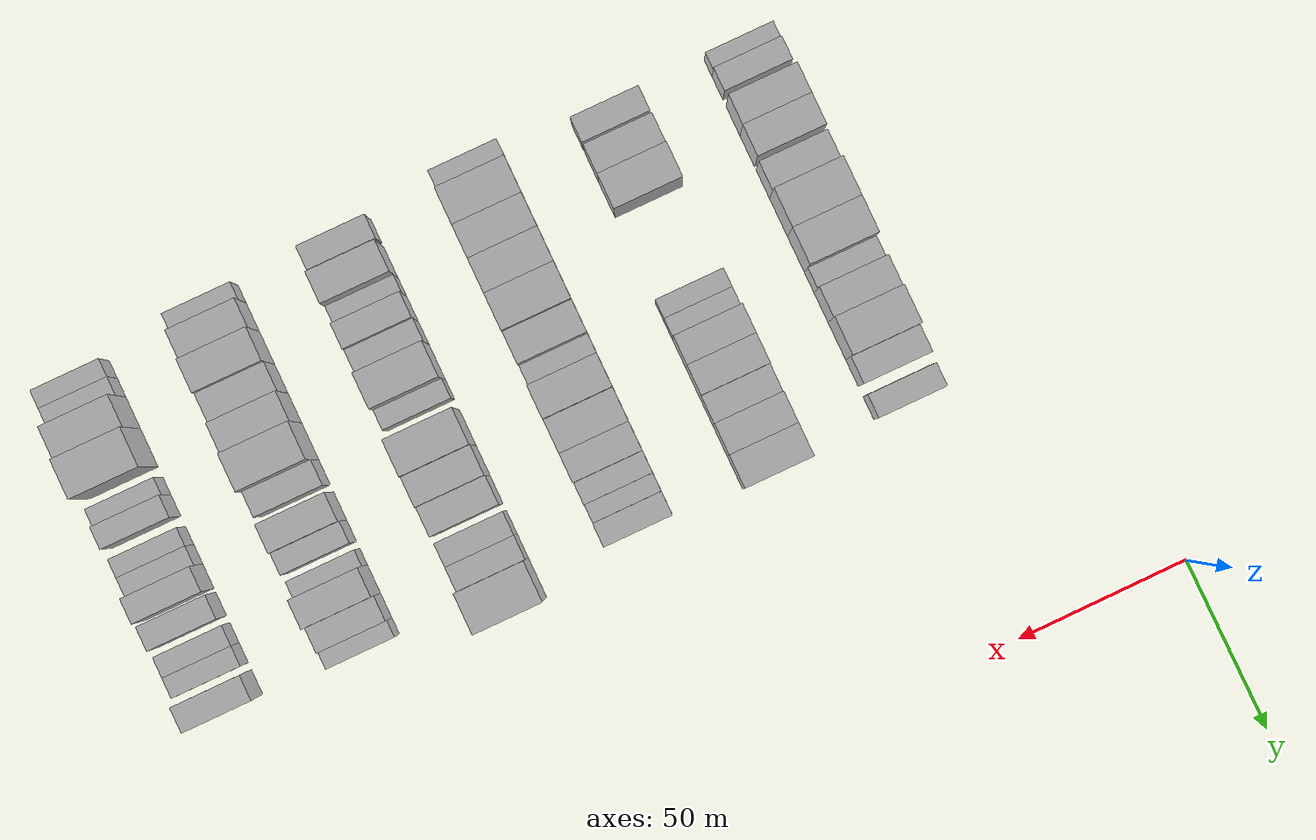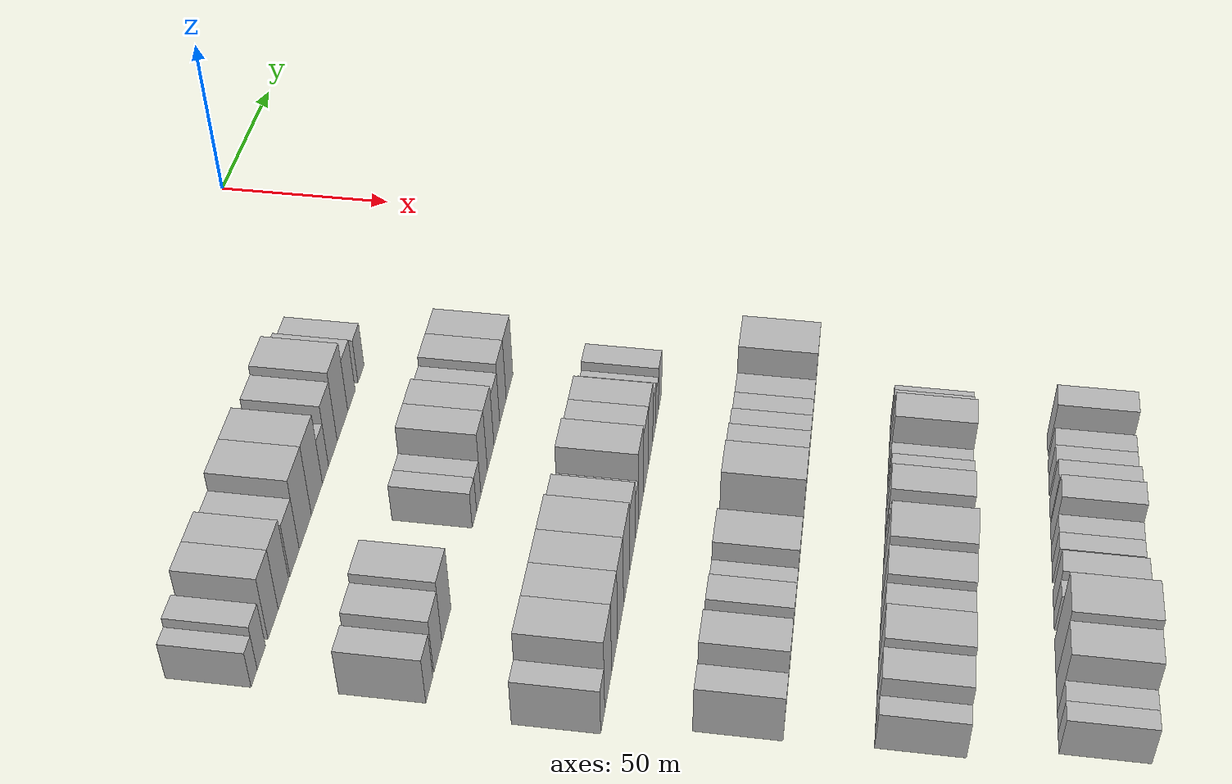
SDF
<sdf version="1.6">
 <world name="default">
  <model name="building_51">
   <static>1</static>
   <pose>50.0000 -174.9317 0 0.000000 0.000000 0.000000</pose>
   <link name="link">
    <pose>0 0 6.00 0 0 0</pose>
    <collision name="collision"><geometry><box><size>20.0000 4.9875 12.0000</size></box></geometry></collision>
    <visual name="visual">
     <cast_shadows>0</cast_shadows>
     <geometry><box><size>20.0000 4.9875 12.0000</size></box></geometry>
     <material>
      <script>
       <uri>model://HANNAS_wall/materials/scripts</uri>
       <uri>model://HANNAS_wall/materials/textures</uri>
       <name>vrc/HANNAS_wall</name>
      </script>
     </material>
    </visual>
   </link>
  </model>
  <model name="building_52">
   <static>1</static>
   <pose>50.0000 -168.9902 0 0.000000 0.000000 0.000000</pose>
   <link name="link">
    <pose>0 0 7.50 0 0 0</pose>
    <collision name="collision"><geometry><box><size>20.0000 6.8953 15.0000</size></box></geometry></collision>
    <visual name="visual">
     <cast_shadows>0</cast_shadows>
     <geometry><box><size>20.0000 6.8953 15.0000</size></box></geometry>
     <material>
      <script>
       <uri>model://HANNAS_wall/materials/scripts</uri>
       <uri>model://HANNAS_wall/materials/textures</uri>
       <name>vrc/HANNAS_wall</name>
      </script>
     </material>
    </visual>
   </link>
  </model>
  <model name="building_53">
   <static>1</static>
   <pose>50.0000 -159.1283 0 0.000000 0.000000 0.000000</pose>
   <link name="link">
    <pose>0 0 10.50 0 0 0</pose>
    <collision name="collision"><geometry><box><size>20.0000 8.8286 21.0000</size></box></geometry></collision>
    <visual name="visual">
     <cast_shadows>0</cast_shadows>
     <geometry><box><size>20.0000 8.8286 21.0000</size></box></geometry>
     <material>
      <script>
       <uri>model://HANNAS_wall/materials/scripts</uri>
       <uri>model://HANNAS_wall/materials/textures</uri>
       <name>vrc/HANNAS_wall</name>
      </script>
     </material>
    </visual>
   </link>
  </model>
  <model name="building_54">
   <static>1</static>
   <pose>50.0000 -150.0914 0 0.000000 0.000000 0.000000</pose>
   <link name="link">
    <pose>0 0 10.50 0 0 0</pose>
    <collision name="collision"><geometry><box><size>20.0000 9.2452 21.0000</size></box></geometry></collision>
    <visual name="visual">
     <cast_shadows>0</cast_shadows>
     <geometry><box><size>20.0000 9.2452 21.0000</size></box></geometry>
     <material>
      <script>
       <uri>model://HANNAS_wall/materials/scripts</uri>
       <uri>model://HANNAS_wall/materials/textures</uri>
       <name>vrc/HANNAS_wall</name>
      </script>
     </material>
    </visual>
   </link>
  </model>
  <model name="building_55">
   <static>1</static>
   <pose>50.0000 -140.1754 0 0.000000 0.000000 0.000000</pose>
   <link name="link">
    <pose>0 0 9.00 0 0 0</pose>
    <collision name="collision"><geometry><box><size>20.0000 8.5867 18.0000</size></box></geometry></collision>
    <visual name="visual">
     <cast_shadows>0</cast_shadows>
     <geometry><box><size>20.0000 8.5867 18.0000</size></box></geometry>
     <material>
      <script>
       <uri>model://HANNAS_wall/materials/scripts</uri>
       <uri>model://HANNAS_wall/materials/textures</uri>
       <name>vrc/HANNAS_wall</name>
      </script>
     </material>
    </visual>
   </link>
  </model>
  <model name="building_56">
   <static>1</static>
   <pose>50.0000 -130.2048 0 0.000000 0.000000 0.000000</pose>
   <link name="link">
    <pose>0 0 12.00 0 0 0</pose>
    <collision name="collision"><geometry><box><size>20.0000 11.3546 24.0000</size></box></geometry></collision>
    <visual name="visual">
     <cast_shadows>0</cast_shadows>
     <geometry><box><size>20.0000 11.3546 24.0000</size></box></geometry>
     <material>
      <script>
       <uri>model://HANNAS_wall/materials/scripts</uri>
       <uri>model://HANNAS_wall/materials/textures</uri>
       <name>vrc/HANNAS_wall</name>
      </script>
     </material>
    </visual>
   </link>
  </model>
  <model name="building_57">
   <static>1</static>
   <pose>50.0000 -119.1630 0 0.000000 0.000000 0.000000</pose>
   <link name="link">
    <pose>0 0 12.00 0 0 0</pose>
    <collision name="collision"><geometry><box><size>20.0000 10.7291 24.0000</size></box></geometry></collision>
    <visual name="visual">
     <cast_shadows>0</cast_shadows>
     <geometry><box><size>20.0000 10.7291 24.0000</size></box></geometry>
     <material>
      <script>
       <uri>model://HANNAS_wall/materials/scripts</uri>
       <uri>model://HANNAS_wall/materials/textures</uri>
       <name>vrc/HANNAS_wall</name>
      </script>
     </material>
    </visual>
   </link>
  </model>
  <model name="building_58">
   <static>1</static>
   <pose>50.0000 -110.7547 0 0.000000 0.000000 0.000000</pose>
   <link name="link">
    <pose>0 0 7.50 0 0 0</pose>
    <collision name="collision"><geometry><box><size>20.0000 6.0874 15.0000</size></box></geometry></collision>
    <visual name="visual">
     <cast_shadows>0</cast_shadows>
     <geometry><box><size>20.0000 6.0874 15.0000</size></box></geometry>
     <material>
      <script>
       <uri>model://HANNAS_wall/materials/scripts</uri>
       <uri>model://HANNAS_wall/materials/textures</uri>
       <name>vrc/HANNAS_wall</name>
      </script>
     </material>
    </visual>
   </link>
  </model>
  <model name="building_59">
   <static>1</static>
   <pose>50.0000 -103.2702 0 0.000000 0.000000 0.000000</pose>
   <link name="link">
    <pose>0 0 10.50 0 0 0</pose>
    <collision name="collision"><geometry><box><size>20.0000 8.8816 21.0000</size></box></geometry></collision>
    <visual name="visual">
     <cast_shadows>0</cast_shadows>
     <geometry><box><size>20.0000 8.8816 21.0000</size></box></geometry>
     <material>
      <script>
       <uri>model://HANNAS_wall/materials/scripts</uri>
       <uri>model://HANNAS_wall/materials/textures</uri>
       <name>vrc/HANNAS_wall</name>
      </script>
     </material>
    </visual>
   </link>
  </model>
  <model name="building_60">
   <static>1</static>
   <pose>50.0000 -93.2783 0 0.000000 0.000000 0.000000</pose>
   <link name="link">
    <pose>0 0 12.00 0 0 0</pose>
    <collision name="collision"><geometry><box><size>20.0000 11.1021 24.0000</size></box></geometry></collision>
    <visual name="visual">
     <cast_shadows>0</cast_shadows>
     <geometry><box><size>20.0000 11.1021 24.0000</size></box></geometry>
     <material>
      <script>
       <uri>model://HANNAS_wall/materials/scripts</uri>
       <uri>model://HANNAS_wall/materials/textures</uri>
       <name>vrc/HANNAS_wall</name>
      </script>
     </material>
    </visual>
   </link>
  </model>
  <model name="building_61">
   <static>1</static>
   <pose>50.0000 -83.7595 0 0.000000 0.000000 0.000000</pose>
   <link name="link">
    <pose>0 0 9.00 0 0 0</pose>
    <collision name="collision"><geometry><box><size>20.0000 7.9356 18.0000</size></box></geometry></collision>
    <visual name="visual">
     <cast_shadows>0</cast_shadows>
     <geometry><box><size>20.0000 7.9356 18.0000</size></box></geometry>
     <material>
      <script>
       <uri>model://HANNAS_wall/materials/scripts</uri>
       <uri>model://HANNAS_wall/materials/textures</uri>
       <name>vrc/HANNAS_wall</name>
      </script>
     </material>
    </visual>
   </link>
  </model>
  <model name="building_62">
   <static>1</static>
   <pose>50.0000 -73.3853 0 0.000000 0.000000 0.000000</pose>
   <link name="link">
    <pose>0 0 7.50 0 0 0</pose>
    <collision name="collision"><geometry><box><size>20.0000 6.8128 15.0000</size></box></geometry></collision>
    <visual name="visual">
     <cast_shadows>0</cast_shadows>
     <geometry><box><size>20.0000 6.8128 15.0000</size></box></geometry>
     <material>
      <script>
       <uri>model://HANNAS_wall/materials/scripts</uri>
       <uri>model://HANNAS_wall/materials/textures</uri>
       <name>vrc/HANNAS_wall</name>
      </script>
     </material>
    </visual>
   </link>
  </model>
  <model name="building_185">
   <static>1</static>
   <pose>90.0000 -172.8648 0 0.000000 0.000000 0.000000</pose>
   <link name="link">
    <pose>0 0 7.50 0 0 0</pose>
    <collision name="collision"><geometry><box><size>20.0000 7.4300 15.0000</size></box></geometry></collision>
    <visual name="visual">
     <cast_shadows>0</cast_shadows>
     <geometry><box><size>20.0000 7.4300 15.0000</size></box></geometry>
     <material>
      <script>
       <uri>model://HANNAS_wall/materials/scripts</uri>
       <uri>model://HANNAS_wall/materials/textures</uri>
       <name>vrc/HANNAS_wall</name>
      </script>
     </material>
    </visual>
   </link>
  </model>
  <model name="building_186">
   <static>1</static>
   <pose>90.0000 -163.6841 0 0.000000 0.000000 0.000000</pose>
   <link name="link">
    <pose>0 0 9.00 0 0 0</pose>
    <collision name="collision"><geometry><box><size>20.0000 8.9315 18.0000</size></box></geometry></collision>
    <visual name="visual">
     <cast_shadows>0</cast_shadows>
     <geometry><box><size>20.0000 8.9315 18.0000</size></box></geometry>
     <material>
      <script>
       <uri>model://HANNAS_wall/materials/scripts</uri>
       <uri>model://HANNAS_wall/materials/textures</uri>
       <name>vrc/HANNAS_wall</name>
      </script>
     </material>
    </visual>
   </link>
  </model>
  <model name="building_187">
   <static>1</static>
   <pose>90.0000 -154.0826 0 0.000000 0.000000 0.000000</pose>
   <link name="link">
    <pose>0 0 10.50 0 0 0</pose>
    <collision name="collision"><geometry><box><size>20.0000 10.2714 21.0000</size></box></geometry></collision>
    <visual name="visual">
     <cast_shadows>0</cast_shadows>
     <geometry><box><size>20.0000 10.2714 21.0000</size></box></geometry>
     <material>
      <script>
       <uri>model://HANNAS_wall/materials/scripts</uri>
       <uri>model://HANNAS_wall/materials/textures</uri>
       <name>vrc/HANNAS_wall</name>
      </script>
     </material>
    </visual>
   </link>
  </model>
  <model name="building_188">
   <static>1</static>
   <pose>90.0000 -120.6991 0 0.000000 0.000000 0.000000</pose>
   <link name="link">
    <pose>0 0 6.00 0 0 0</pose>
    <collision name="collision"><geometry><box><size>20.0000 5.4985 12.0000</size></box></geometry></collision>
    <visual name="visual">
     <cast_shadows>0</cast_shadows>
     <geometry><box><size>20.0000 5.4985 12.0000</size></box></geometry>
     <material>
      <script>
       <uri>model://HANNAS_wall/materials/scripts</uri>
       <uri>model://HANNAS_wall/materials/textures</uri>
       <name>vrc/HANNAS_wall</name>
      </script>
     </material>
    </visual>
   </link>
  </model>
  <model name="building_189">
   <static>1</static>
   <pose>90.0000 -115.1259 0 0.000000 0.000000 0.000000</pose>
   <link name="link">
    <pose>0 0 6.00 0 0 0</pose>
    <collision name="collision"><geometry><box><size>20.0000 5.6479 12.0000</size></box></geometry></collision>
    <visual name="visual">
     <cast_shadows>0</cast_shadows>
     <geometry><box><size>20.0000 5.6479 12.0000</size></box></geometry>
     <material>
      <script>
       <uri>model://HANNAS_wall/materials/scripts</uri>
       <uri>model://HANNAS_wall/materials/textures</uri>
       <name>vrc/HANNAS_wall</name>
      </script>
     </material>
    </visual>
   </link>
  </model>
  <model name="building_190">
   <static>1</static>
   <pose>90.0000 -108.0797 0 0.000000 0.000000 0.000000</pose>
   <link name="link">
    <pose>0 0 10.50 0 0 0</pose>
    <collision name="collision"><geometry><box><size>20.0000 8.4444 21.0000</size></box></geometry></collision>
    <visual name="visual">
     <cast_shadows>0</cast_shadows>
     <geometry><box><size>20.0000 8.4444 21.0000</size></box></geometry>
     <material>
      <script>
       <uri>model://HANNAS_wall/materials/scripts</uri>
       <uri>model://HANNAS_wall/materials/textures</uri>
       <name>vrc/HANNAS_wall</name>
      </script>
     </material>
    </visual>
   </link>
  </model>
  <model name="building_191">
   <static>1</static>
   <pose>90.0000 -99.4560 0 0.000000 0.000000 0.000000</pose>
   <link name="link">
    <pose>0 0 10.50 0 0 0</pose>
    <collision name="collision"><geometry><box><size>20.0000 8.8029 21.0000</size></box></geometry></collision>
    <visual name="visual">
     <cast_shadows>0</cast_shadows>
     <geometry><box><size>20.0000 8.8029 21.0000</size></box></geometry>
     <material>
      <script>
       <uri>model://HANNAS_wall/materials/scripts</uri>
       <uri>model://HANNAS_wall/materials/textures</uri>
       <name>vrc/HANNAS_wall</name>
      </script>
     </material>
    </visual>
   </link>
  </model>
  <model name="building_192">
   <static>1</static>
   <pose>90.0000 -91.0286 0 0.000000 0.000000 0.000000</pose>
   <link name="link">
    <pose>0 0 9.00 0 0 0</pose>
    <collision name="collision"><geometry><box><size>20.0000 8.0520 18.0000</size></box></geometry></collision>
    <visual name="visual">
     <cast_shadows>0</cast_shadows>
     <geometry><box><size>20.0000 8.0520 18.0000</size></box></geometry>
     <material>
      <script>
       <uri>model://HANNAS_wall/materials/scripts</uri>
       <uri>model://HANNAS_wall/materials/textures</uri>
       <name>vrc/HANNAS_wall</name>
      </script>
     </material>
    </visual>
   </link>
  </model>
  <model name="building_193">
   <static>1</static>
   <pose>90.0000 -82.4670 0 0.000000 0.000000 0.000000</pose>
   <link name="link">
    <pose>0 0 10.50 0 0 0</pose>
    <collision name="collision"><geometry><box><size>20.0000 9.0711 21.0000</size></box></geometry></collision>
    <visual name="visual">
     <cast_shadows>0</cast_shadows>
     <geometry><box><size>20.0000 9.0711 21.0000</size></box></geometry>
     <material>
      <script>
       <uri>model://HANNAS_wall/materials/scripts</uri>
       <uri>model://HANNAS_wall/materials/textures</uri>
       <name>vrc/HANNAS_wall</name>
      </script>
     </material>
    </visual>
   </link>
  </model>
  <model name="building_194">
   <static>1</static>
   <pose>90.0000 -73.1087 0 0.000000 0.000000 0.000000</pose>
   <link name="link">
    <pose>0 0 10.50 0 0 0</pose>
    <collision name="collision"><geometry><box><size>20.0000 9.6455 21.0000</size></box></geometry></collision>
    <visual name="visual">
     <cast_shadows>0</cast_shadows>
     <geometry><box><size>20.0000 9.6455 21.0000</size></box></geometry>
     <material>
      <script>
       <uri>model://HANNAS_wall/materials/scripts</uri>
       <uri>model://HANNAS_wall/materials/textures</uri>
       <name>vrc/HANNAS_wall</name>
      </script>
     </material>
    </visual>
   </link>
  </model>
  <model name="building_309">
   <static>1</static>
   <pose>130.0000 -176.6310 0 0.000000 0.000000 0.000000</pose>
   <link name="link">
    <pose>0 0 7.50 0 0 0</pose>
    <collision name="collision"><geometry><box><size>20.0000 6.1783 15.0000</size></box></geometry></collision>
    <visual name="visual">
     <cast_shadows>0</cast_shadows>
     <geometry><box><size>20.0000 6.1783 15.0000</size></box></geometry>
     <material>
      <script>
       <uri>model://HANNAS_wall/materials/scripts</uri>
       <uri>model://HANNAS_wall/materials/textures</uri>
       <name>vrc/HANNAS_wall</name>
      </script>
     </material>
    </visual>
   </link>
  </model>
  <model name="building_310">
   <static>1</static>
   <pose>130.0000 -168.1764 0 0.000000 0.000000 0.000000</pose>
   <link name="link">
    <pose>0 0 12.00 0 0 0</pose>
    <collision name="collision"><geometry><box><size>20.0000 10.7309 24.0000</size></box></geometry></collision>
    <visual name="visual">
     <cast_shadows>0</cast_shadows>
     <geometry><box><size>20.0000 10.7309 24.0000</size></box></geometry>
     <material>
      <script>
       <uri>model://HANNAS_wall/materials/scripts</uri>
       <uri>model://HANNAS_wall/materials/textures</uri>
       <name>vrc/HANNAS_wall</name>
      </script>
     </material>
    </visual>
   </link>
  </model>
  <model name="building_311">
   <static>1</static>
   <pose>130.0000 -157.9680 0 0.000000 0.000000 0.000000</pose>
   <link name="link">
    <pose>0 0 12.00 0 0 0</pose>
    <collision name="collision"><geometry><box><size>20.0000 9.6860 24.0000</size></box></geometry></collision>
    <visual name="visual">
     <cast_shadows>0</cast_shadows>
     <geometry><box><size>20.0000 9.6860 24.0000</size></box></geometry>
     <material>
      <script>
       <uri>model://HANNAS_wall/materials/scripts</uri>
       <uri>model://HANNAS_wall/materials/textures</uri>
       <name>vrc/HANNAS_wall</name>
      </script>
     </material>
    </visual>
   </link>
  </model>
  <model name="building_312">
   <static>1</static>
   <pose>130.0000 -148.0947 0 0.000000 0.000000 0.000000</pose>
   <link name="link">
    <pose>0 0 12.00 0 0 0</pose>
    <collision name="collision"><geometry><box><size>20.0000 10.0605 24.0000</size></box></geometry></collision>
    <visual name="visual">
     <cast_shadows>0</cast_shadows>
     <geometry><box><size>20.0000 10.0605 24.0000</size></box></geometry>
     <material>
      <script>
       <uri>model://HANNAS_wall/materials/scripts</uri>
       <uri>model://HANNAS_wall/materials/textures</uri>
       <name>vrc/HANNAS_wall</name>
      </script>
     </material>
    </visual>
   </link>
  </model>
  <model name="building_313">
   <static>1</static>
   <pose>130.0000 -137.6491 0 0.000000 0.000000 0.000000</pose>
   <link name="link">
    <pose>0 0 12.00 0 0 0</pose>
    <collision name="collision"><geometry><box><size>20.0000 10.8307 24.0000</size></box></geometry></collision>
    <visual name="visual">
     <cast_shadows>0</cast_shadows>
     <geometry><box><size>20.0000 10.8307 24.0000</size></box></geometry>
     <material>
      <script>
       <uri>model://HANNAS_wall/materials/scripts</uri>
       <uri>model://HANNAS_wall/materials/textures</uri>
       <name>vrc/HANNAS_wall</name>
      </script>
     </material>
    </visual>
   </link>
  </model>
  <model name="building_314">
   <static>1</static>
   <pose>130.0000 -127.5017 0 0.000000 0.000000 0.000000</pose>
   <link name="link">
    <pose>0 0 10.50 0 0 0</pose>
    <collision name="collision"><geometry><box><size>20.0000 9.4641 21.0000</size></box></geometry></collision>
    <visual name="visual">
     <cast_shadows>0</cast_shadows>
     <geometry><box><size>20.0000 9.4641 21.0000</size></box></geometry>
     <material>
      <script>
       <uri>model://HANNAS_wall/materials/scripts</uri>
       <uri>model://HANNAS_wall/materials/textures</uri>
       <name>vrc/HANNAS_wall</name>
      </script>
     </material>
    </visual>
   </link>
  </model>
  <model name="building_315">
   <static>1</static>
   <pose>130.0000 -119.7071 0 0.000000 0.000000 0.000000</pose>
   <link name="link">
    <pose>0 0 7.50 0 0 0</pose>
    <collision name="collision"><geometry><box><size>20.0000 6.1252 15.0000</size></box></geometry></collision>
    <visual name="visual">
     <cast_shadows>0</cast_shadows>
     <geometry><box><size>20.0000 6.1252 15.0000</size></box></geometry>
     <material>
      <script>
       <uri>model://HANNAS_wall/materials/scripts</uri>
       <uri>model://HANNAS_wall/materials/textures</uri>
       <name>vrc/HANNAS_wall</name>
      </script>
     </material>
    </visual>
   </link>
  </model>
  <model name="building_316">
   <static>1</static>
   <pose>130.0000 -111.7551 0 0.000000 0.000000 0.000000</pose>
   <link name="link">
    <pose>0 0 12.00 0 0 0</pose>
    <collision name="collision"><geometry><box><size>20.0000 9.7788 24.0000</size></box></geometry></collision>
    <visual name="visual">
     <cast_shadows>0</cast_shadows>
     <geometry><box><size>20.0000 9.7788 24.0000</size></box></geometry>
     <material>
      <script>
       <uri>model://HANNAS_wall/materials/scripts</uri>
       <uri>model://HANNAS_wall/materials/textures</uri>
       <name>vrc/HANNAS_wall</name>
      </script>
     </material>
    </visual>
   </link>
  </model>
  <model name="building_317">
   <static>1</static>
   <pose>130.0000 -101.9747 0 0.000000 0.000000 0.000000</pose>
   <link name="link">
    <pose>0 0 10.50 0 0 0</pose>
    <collision name="collision"><geometry><box><size>20.0000 9.7819 21.0000</size></box></geometry></collision>
    <visual name="visual">
     <cast_shadows>0</cast_shadows>
     <geometry><box><size>20.0000 9.7819 21.0000</size></box></geometry>
     <material>
      <script>
       <uri>model://HANNAS_wall/materials/scripts</uri>
       <uri>model://HANNAS_wall/materials/textures</uri>
       <name>vrc/HANNAS_wall</name>
      </script>
     </material>
    </visual>
   </link>
  </model>
  <model name="building_318">
   <static>1</static>
   <pose>130.0000 -92.8595 0 0.000000 0.000000 0.000000</pose>
   <link name="link">
    <pose>0 0 10.50 0 0 0</pose>
    <collision name="collision"><geometry><box><size>20.0000 8.4484 21.0000</size></box></geometry></collision>
    <visual name="visual">
     <cast_shadows>0</cast_shadows>
     <geometry><box><size>20.0000 8.4484 21.0000</size></box></geometry>
     <material>
      <script>
       <uri>model://HANNAS_wall/materials/scripts</uri>
       <uri>model://HANNAS_wall/materials/textures</uri>
       <name>vrc/HANNAS_wall</name>
      </script>
     </material>
    </visual>
   </link>
  </model>
  <model name="building_319">
   <static>1</static>
   <pose>130.0000 -85.4300 0 0.000000 0.000000 0.000000</pose>
   <link name="link">
    <pose>0 0 7.50 0 0 0</pose>
    <collision name="collision"><geometry><box><size>20.0000 6.4107 15.0000</size></box></geometry></collision>
    <visual name="visual">
     <cast_shadows>0</cast_shadows>
     <geometry><box><size>20.0000 6.4107 15.0000</size></box></geometry>
     <material>
      <script>
       <uri>model://HANNAS_wall/materials/scripts</uri>
       <uri>model://HANNAS_wall/materials/textures</uri>
       <name>vrc/HANNAS_wall</name>
      </script>
     </material>
    </visual>
   </link>
  </model>
  <model name="building_320">
   <static>1</static>
   <pose>130.0000 -79.5495 0 0.000000 0.000000 0.000000</pose>
   <link name="link">
    <pose>0 0 6.00 0 0 0</pose>
    <collision name="collision"><geometry><box><size>20.0000 5.3502 12.0000</size></box></geometry></collision>
    <visual name="visual">
     <cast_shadows>0</cast_shadows>
     <geometry><box><size>20.0000 5.3502 12.0000</size></box></geometry>
     <material>
      <script>
       <uri>model://HANNAS_wall/materials/scripts</uri>
       <uri>model://HANNAS_wall/materials/textures</uri>
       <name>vrc/HANNAS_wall</name>
      </script>
     </material>
    </visual>
   </link>
  </model>
  <model name="building_321">
   <static>1</static>
   <pose>130.0000 -73.4146 0 0.000000 0.000000 0.000000</pose>
   <link name="link">
    <pose>0 0 7.50 0 0 0</pose>
    <collision name="collision"><geometry><box><size>20.0000 6.9196 15.0000</size></box></geometry></collision>
    <visual name="visual">
     <cast_shadows>0</cast_shadows>
     <geometry><box><size>20.0000 6.9196 15.0000</size></box></geometry>
     <material>
      <script>
       <uri>model://HANNAS_wall/materials/scripts</uri>
       <uri>model://HANNAS_wall/materials/textures</uri>
       <name>vrc/HANNAS_wall</name>
      </script>
     </material>
    </visual>
   </link>
  </model>
  <model name="building_455">
   <static>1</static>
   <pose>170.0000 -172.8435 0 0.000000 0.000000 0.000000</pose>
   <link name="link">
    <pose>0 0 7.50 0 0 0</pose>
    <collision name="collision"><geometry><box><size>20.0000 7.0552 15.0000</size></box></geometry></collision>
    <visual name="visual">
     <cast_shadows>0</cast_shadows>
     <geometry><box><size>20.0000 7.0552 15.0000</size></box></geometry>
     <material>
      <script>
       <uri>model://HANNAS_wall/materials/scripts</uri>
       <uri>model://HANNAS_wall/materials/textures</uri>
       <name>vrc/HANNAS_wall</name>
      </script>
     </material>
    </visual>
   </link>
  </model>
  <model name="building_456">
   <static>1</static>
   <pose>170.0000 -163.6636 0 0.000000 0.000000 0.000000</pose>
   <link name="link">
    <pose>0 0 10.50 0 0 0</pose>
    <collision name="collision"><geometry><box><size>20.0000 9.3048 21.0000</size></box></geometry></collision>
    <visual name="visual">
     <cast_shadows>0</cast_shadows>
     <geometry><box><size>20.0000 9.3048 21.0000</size></box></geometry>
     <material>
      <script>
       <uri>model://HANNAS_wall/materials/scripts</uri>
       <uri>model://HANNAS_wall/materials/textures</uri>
       <name>vrc/HANNAS_wall</name>
      </script>
     </material>
    </visual>
   </link>
  </model>
  <model name="building_457">
   <static>1</static>
   <pose>170.0000 -156.2879 0 0.000000 0.000000 0.000000</pose>
   <link name="link">
    <pose>0 0 6.00 0 0 0</pose>
    <collision name="collision"><geometry><box><size>20.0000 5.4465 12.0000</size></box></geometry></collision>
    <visual name="visual">
     <cast_shadows>0</cast_shadows>
     <geometry><box><size>20.0000 5.4465 12.0000</size></box></geometry>
     <material>
      <script>
       <uri>model://HANNAS_wall/materials/scripts</uri>
       <uri>model://HANNAS_wall/materials/textures</uri>
       <name>vrc/HANNAS_wall</name>
      </script>
     </material>
    </visual>
   </link>
  </model>
  <model name="building_458">
   <static>1</static>
   <pose>170.0000 -149.7970 0 0.000000 0.000000 0.000000</pose>
   <link name="link">
    <pose>0 0 9.00 0 0 0</pose>
    <collision name="collision"><geometry><box><size>20.0000 7.5354 18.0000</size></box></geometry></collision>
    <visual name="visual">
     <cast_shadows>0</cast_shadows>
     <geometry><box><size>20.0000 7.5354 18.0000</size></box></geometry>
     <material>
      <script>
       <uri>model://HANNAS_wall/materials/scripts</uri>
       <uri>model://HANNAS_wall/materials/textures</uri>
       <name>vrc/HANNAS_wall</name>
      </script>
     </material>
    </visual>
   </link>
  </model>
  <model name="building_459">
   <static>1</static>
   <pose>170.0000 -142.5515 0 0.000000 0.000000 0.000000</pose>
   <link name="link">
    <pose>0 0 7.50 0 0 0</pose>
    <collision name="collision"><geometry><box><size>20.0000 6.9555 15.0000</size></box></geometry></collision>
    <visual name="visual">
     <cast_shadows>0</cast_shadows>
     <geometry><box><size>20.0000 6.9555 15.0000</size></box></geometry>
     <material>
      <script>
       <uri>model://HANNAS_wall/materials/scripts</uri>
       <uri>model://HANNAS_wall/materials/textures</uri>
       <name>vrc/HANNAS_wall</name>
      </script>
     </material>
    </visual>
   </link>
  </model>
  <model name="building_460">
   <static>1</static>
   <pose>170.0000 -133.8368 0 0.000000 0.000000 0.000000</pose>
   <link name="link">
    <pose>0 0 10.50 0 0 0</pose>
    <collision name="collision"><geometry><box><size>20.0000 10.4739 21.0000</size></box></geometry></collision>
    <visual name="visual">
     <cast_shadows>0</cast_shadows>
     <geometry><box><size>20.0000 10.4739 21.0000</size></box></geometry>
     <material>
      <script>
       <uri>model://HANNAS_wall/materials/scripts</uri>
       <uri>model://HANNAS_wall/materials/textures</uri>
       <name>vrc/HANNAS_wall</name>
      </script>
     </material>
    </visual>
   </link>
  </model>
  <model name="building_461">
   <static>1</static>
   <pose>170.0000 -125.6712 0 0.000000 0.000000 0.000000</pose>
   <link name="link">
    <pose>0 0 6.00 0 0 0</pose>
    <collision name="collision"><geometry><box><size>20.0000 5.8572 12.0000</size></box></geometry></collision>
    <visual name="visual">
     <cast_shadows>0</cast_shadows>
     <geometry><box><size>20.0000 5.8572 12.0000</size></box></geometry>
     <material>
      <script>
       <uri>model://HANNAS_wall/materials/scripts</uri>
       <uri>model://HANNAS_wall/materials/textures</uri>
       <name>vrc/HANNAS_wall</name>
      </script>
     </material>
    </visual>
   </link>
  </model>
  <model name="building_462">
   <static>1</static>
   <pose>170.0000 -114.4054 0 0.000000 0.000000 0.000000</pose>
   <link name="link">
    <pose>0 0 12.00 0 0 0</pose>
    <collision name="collision"><geometry><box><size>20.0000 10.6745 24.0000</size></box></geometry></collision>
    <visual name="visual">
     <cast_shadows>0</cast_shadows>
     <geometry><box><size>20.0000 10.6745 24.0000</size></box></geometry>
     <material>
      <script>
       <uri>model://HANNAS_wall/materials/scripts</uri>
       <uri>model://HANNAS_wall/materials/textures</uri>
       <name>vrc/HANNAS_wall</name>
      </script>
     </material>
    </visual>
   </link>
  </model>
  <model name="building_463">
   <static>1</static>
   <pose>170.0000 -104.6766 0 0.000000 0.000000 0.000000</pose>
   <link name="link">
    <pose>0 0 10.50 0 0 0</pose>
    <collision name="collision"><geometry><box><size>20.0000 8.7830 21.0000</size></box></geometry></collision>
    <visual name="visual">
     <cast_shadows>0</cast_shadows>
     <geometry><box><size>20.0000 8.7830 21.0000</size></box></geometry>
     <material>
      <script>
       <uri>model://HANNAS_wall/materials/scripts</uri>
       <uri>model://HANNAS_wall/materials/textures</uri>
       <name>vrc/HANNAS_wall</name>
      </script>
     </material>
    </visual>
   </link>
  </model>
  <model name="building_464">
   <static>1</static>
   <pose>170.0000 -96.0380 0 0.000000 0.000000 0.000000</pose>
   <link name="link">
    <pose>0 0 9.00 0 0 0</pose>
    <collision name="collision"><geometry><box><size>20.0000 8.4942 18.0000</size></box></geometry></collision>
    <visual name="visual">
     <cast_shadows>0</cast_shadows>
     <geometry><box><size>20.0000 8.4942 18.0000</size></box></geometry>
     <material>
      <script>
       <uri>model://HANNAS_wall/materials/scripts</uri>
       <uri>model://HANNAS_wall/materials/textures</uri>
       <name>vrc/HANNAS_wall</name>
      </script>
     </material>
    </visual>
   </link>
  </model>
  <model name="building_465">
   <static>1</static>
   <pose>170.0000 -86.3375 0 0.000000 0.000000 0.000000</pose>
   <link name="link">
    <pose>0 0 7.50 0 0 0</pose>
    <collision name="collision"><geometry><box><size>20.0000 6.9069 15.0000</size></box></geometry></collision>
    <visual name="visual">
     <cast_shadows>0</cast_shadows>
     <geometry><box><size>20.0000 6.9069 15.0000</size></box></geometry>
     <material>
      <script>
       <uri>model://HANNAS_wall/materials/scripts</uri>
       <uri>model://HANNAS_wall/materials/textures</uri>
       <name>vrc/HANNAS_wall</name>
      </script>
     </material>
    </visual>
   </link>
  </model>
  <model name="building_466">
   <static>1</static>
   <pose>170.0000 -79.3431 0 0.000000 0.000000 0.000000</pose>
   <link name="link">
    <pose>0 0 7.50 0 0 0</pose>
    <collision name="collision"><geometry><box><size>20.0000 7.0819 15.0000</size></box></geometry></collision>
    <visual name="visual">
     <cast_shadows>0</cast_shadows>
     <geometry><box><size>20.0000 7.0819 15.0000</size></box></geometry>
     <material>
      <script>
       <uri>model://HANNAS_wall/materials/scripts</uri>
       <uri>model://HANNAS_wall/materials/textures</uri>
       <name>vrc/HANNAS_wall</name>
      </script>
     </material>
    </visual>
   </link>
  </model>
  <model name="building_467">
   <static>1</static>
   <pose>170.0000 -69.8834 0 0.000000 0.000000 0.000000</pose>
   <link name="link">
    <pose>0 0 12.00 0 0 0</pose>
    <collision name="collision"><geometry><box><size>20.0000 11.8375 24.0000</size></box></geometry></collision>
    <visual name="visual">
     <cast_shadows>0</cast_shadows>
     <geometry><box><size>20.0000 11.8375 24.0000</size></box></geometry>
     <material>
      <script>
       <uri>model://HANNAS_wall/materials/scripts</uri>
       <uri>model://HANNAS_wall/materials/textures</uri>
       <name>vrc/HANNAS_wall</name>
      </script>
     </material>
    </visual>
   </link>
  </model>
  <model name="building_597">
   <static>1</static>
   <pose>210.0000 -173.0070 0 0.000000 0.000000 0.000000</pose>
   <link name="link">
    <pose>0 0 6.00 0 0 0</pose>
    <collision name="collision"><geometry><box><size>20.0000 5.2297 12.0000</size></box></geometry></collision>
    <visual name="visual">
     <cast_shadows>0</cast_shadows>
     <geometry><box><size>20.0000 5.2297 12.0000</size></box></geometry>
     <material>
      <script>
       <uri>model://HANNAS_wall/materials/scripts</uri>
       <uri>model://HANNAS_wall/materials/textures</uri>
       <name>vrc/HANNAS_wall</name>
      </script>
     </material>
    </visual>
   </link>
  </model>
  <model name="building_598">
   <static>1</static>
   <pose>210.0000 -166.0994 0 0.000000 0.000000 0.000000</pose>
   <link name="link">
    <pose>0 0 9.00 0 0 0</pose>
    <collision name="collision"><geometry><box><size>20.0000 8.5856 18.0000</size></box></geometry></collision>
    <visual name="visual">
     <cast_shadows>0</cast_shadows>
     <geometry><box><size>20.0000 8.5856 18.0000</size></box></geometry>
     <material>
      <script>
       <uri>model://HANNAS_wall/materials/scripts</uri>
       <uri>model://HANNAS_wall/materials/textures</uri>
       <name>vrc/HANNAS_wall</name>
      </script>
     </material>
    </visual>
   </link>
  </model>
  <model name="building_599">
   <static>1</static>
   <pose>210.0000 -156.8971 0 0.000000 0.000000 0.000000</pose>
   <link name="link">
    <pose>0 0 10.50 0 0 0</pose>
    <collision name="collision"><geometry><box><size>20.0000 9.8189 21.0000</size></box></geometry></collision>
    <visual name="visual">
     <cast_shadows>0</cast_shadows>
     <geometry><box><size>20.0000 9.8189 21.0000</size></box></geometry>
     <material>
      <script>
       <uri>model://HANNAS_wall/materials/scripts</uri>
       <uri>model://HANNAS_wall/materials/textures</uri>
       <name>vrc/HANNAS_wall</name>
      </script>
     </material>
    </visual>
   </link>
  </model>
  <model name="building_600">
   <static>1</static>
   <pose>210.0000 -147.6798 0 0.000000 0.000000 0.000000</pose>
   <link name="link">
    <pose>0 0 9.00 0 0 0</pose>
    <collision name="collision"><geometry><box><size>20.0000 8.6157 18.0000</size></box></geometry></collision>
    <visual name="visual">
     <cast_shadows>0</cast_shadows>
     <geometry><box><size>20.0000 8.6157 18.0000</size></box></geometry>
     <material>
      <script>
       <uri>model://HANNAS_wall/materials/scripts</uri>
       <uri>model://HANNAS_wall/materials/textures</uri>
       <name>vrc/HANNAS_wall</name>
      </script>
     </material>
    </visual>
   </link>
  </model>
  <model name="building_601">
   <static>1</static>
   <pose>210.0000 -138.9732 0 0.000000 0.000000 0.000000</pose>
   <link name="link">
    <pose>0 0 10.50 0 0 0</pose>
    <collision name="collision"><geometry><box><size>20.0000 8.7975 21.0000</size></box></geometry></collision>
    <visual name="visual">
     <cast_shadows>0</cast_shadows>
     <geometry><box><size>20.0000 8.7975 21.0000</size></box></geometry>
     <material>
      <script>
       <uri>model://HANNAS_wall/materials/scripts</uri>
       <uri>model://HANNAS_wall/materials/textures</uri>
       <name>vrc/HANNAS_wall</name>
      </script>
     </material>
    </visual>
   </link>
  </model>
  <model name="building_602">
   <static>1</static>
   <pose>210.0000 -129.0736 0 0.000000 0.000000 0.000000</pose>
   <link name="link">
    <pose>0 0 12.00 0 0 0</pose>
    <collision name="collision"><geometry><box><size>20.0000 11.0019 24.0000</size></box></geometry></collision>
    <visual name="visual">
     <cast_shadows>0</cast_shadows>
     <geometry><box><size>20.0000 11.0019 24.0000</size></box></geometry>
     <material>
      <script>
       <uri>model://HANNAS_wall/materials/scripts</uri>
       <uri>model://HANNAS_wall/materials/textures</uri>
       <name>vrc/HANNAS_wall</name>
      </script>
     </material>
    </visual>
   </link>
  </model>
  <model name="building_603">
   <static>1</static>
   <pose>210.0000 -119.8446 0 0.000000 0.000000 0.000000</pose>
   <link name="link">
    <pose>0 0 7.50 0 0 0</pose>
    <collision name="collision"><geometry><box><size>20.0000 7.4559 15.0000</size></box></geometry></collision>
    <visual name="visual">
     <cast_shadows>0</cast_shadows>
     <geometry><box><size>20.0000 7.4559 15.0000</size></box></geometry>
     <material>
      <script>
       <uri>model://HANNAS_wall/materials/scripts</uri>
       <uri>model://HANNAS_wall/materials/textures</uri>
       <name>vrc/HANNAS_wall</name>
      </script>
     </material>
    </visual>
   </link>
  </model>
  <model name="building_604">
   <static>1</static>
   <pose>210.0000 -109.9160 0 0.000000 0.000000 0.000000</pose>
   <link name="link">
    <pose>0 0 9.00 0 0 0</pose>
    <collision name="collision"><geometry><box><size>20.0000 8.4012 18.0000</size></box></geometry></collision>
    <visual name="visual">
     <cast_shadows>0</cast_shadows>
     <geometry><box><size>20.0000 8.4012 18.0000</size></box></geometry>
     <material>
      <script>
       <uri>model://HANNAS_wall/materials/scripts</uri>
       <uri>model://HANNAS_wall/materials/textures</uri>
       <name>vrc/HANNAS_wall</name>
      </script>
     </material>
    </visual>
   </link>
  </model>
  <model name="building_605">
   <static>1</static>
   <pose>210.0000 -102.5139 0 0.000000 0.000000 0.000000</pose>
   <link name="link">
    <pose>0 0 7.50 0 0 0</pose>
    <collision name="collision"><geometry><box><size>20.0000 6.4031 15.0000</size></box></geometry></collision>
    <visual name="visual">
     <cast_shadows>0</cast_shadows>
     <geometry><box><size>20.0000 6.4031 15.0000</size></box></geometry>
     <material>
      <script>
       <uri>model://HANNAS_wall/materials/scripts</uri>
       <uri>model://HANNAS_wall/materials/textures</uri>
       <name>vrc/HANNAS_wall</name>
      </script>
     </material>
    </visual>
   </link>
  </model>
  <model name="building_606">
   <static>1</static>
   <pose>210.0000 -94.9058 0 0.000000 0.000000 0.000000</pose>
   <link name="link">
    <pose>0 0 6.00 0 0 0</pose>
    <collision name="collision"><geometry><box><size>20.0000 4.8130 12.0000</size></box></geometry></collision>
    <visual name="visual">
     <cast_shadows>0</cast_shadows>
     <geometry><box><size>20.0000 4.8130 12.0000</size></box></geometry>
     <material>
      <script>
       <uri>model://HANNAS_wall/materials/scripts</uri>
       <uri>model://HANNAS_wall/materials/textures</uri>
       <name>vrc/HANNAS_wall</name>
      </script>
     </material>
    </visual>
   </link>
  </model>
  <model name="building_607">
   <static>1</static>
   <pose>210.0000 -88.2814 0 0.000000 0.000000 0.000000</pose>
   <link name="link">
    <pose>0 0 10.50 0 0 0</pose>
    <collision name="collision"><geometry><box><size>20.0000 8.4357 21.0000</size></box></geometry></collision>
    <visual name="visual">
     <cast_shadows>0</cast_shadows>
     <geometry><box><size>20.0000 8.4357 21.0000</size></box></geometry>
     <material>
      <script>
       <uri>model://HANNAS_wall/materials/scripts</uri>
       <uri>model://HANNAS_wall/materials/textures</uri>
       <name>vrc/HANNAS_wall</name>
      </script>
     </material>
    </visual>
   </link>
  </model>
  <model name="building_608">
   <static>1</static>
   <pose>210.0000 -80.4060 0 0.000000 0.000000 0.000000</pose>
   <link name="link">
    <pose>0 0 7.50 0 0 0</pose>
    <collision name="collision"><geometry><box><size>20.0000 7.3153 15.0000</size></box></geometry></collision>
    <visual name="visual">
     <cast_shadows>0</cast_shadows>
     <geometry><box><size>20.0000 7.3153 15.0000</size></box></geometry>
     <material>
      <script>
       <uri>model://HANNAS_wall/materials/scripts</uri>
       <uri>model://HANNAS_wall/materials/textures</uri>
       <name>vrc/HANNAS_wall</name>
      </script>
     </material>
    </visual>
   </link>
  </model>
  <model name="building_609">
   <static>1</static>
   <pose>210.0000 -74.3222 0 0.000000 0.000000 0.000000</pose>
   <link name="link">
    <pose>0 0 6.00 0 0 0</pose>
    <collision name="collision"><geometry><box><size>20.0000 4.8522 12.0000</size></box></geometry></collision>
    <visual name="visual">
     <cast_shadows>0</cast_shadows>
     <geometry><box><size>20.0000 4.8522 12.0000</size></box></geometry>
     <material>
      <script>
       <uri>model://HANNAS_wall/materials/scripts</uri>
       <uri>model://HANNAS_wall/materials/textures</uri>
       <name>vrc/HANNAS_wall</name>
      </script>
     </material>
    </visual>
   </link>
  </model>
  <model name="building_725">
   <static>1</static>
   <pose>250.0000 -169.2326 0 0.000000 0.000000 0.000000</pose>
   <link name="link">
    <pose>0 0 6.00 0 0 0</pose>
    <collision name="collision"><geometry><box><size>20.0000 5.2978 12.0000</size></box></geometry></collision>
    <visual name="visual">
     <cast_shadows>0</cast_shadows>
     <geometry><box><size>20.0000 5.2978 12.0000</size></box></geometry>
     <material>
      <script>
       <uri>model://HANNAS_wall/materials/scripts</uri>
       <uri>model://HANNAS_wall/materials/textures</uri>
       <name>vrc/HANNAS_wall</name>
      </script>
     </material>
    </visual>
   </link>
  </model>
  <model name="building_726">
   <static>1</static>
   <pose>250.0000 -163.8334 0 0.000000 0.000000 0.000000</pose>
   <link name="link">
    <pose>0 0 6.00 0 0 0</pose>
    <collision name="collision"><geometry><box><size>20.0000 5.5007 12.0000</size></box></geometry></collision>
    <visual name="visual">
     <cast_shadows>0</cast_shadows>
     <geometry><box><size>20.0000 5.5007 12.0000</size></box></geometry>
     <material>
      <script>
       <uri>model://HANNAS_wall/materials/scripts</uri>
       <uri>model://HANNAS_wall/materials/textures</uri>
       <name>vrc/HANNAS_wall</name>
      </script>
     </material>
    </visual>
   </link>
  </model>
  <model name="building_727">
   <static>1</static>
   <pose>250.0000 -156.3615 0 0.000000 0.000000 0.000000</pose>
   <link name="link">
    <pose>0 0 10.50 0 0 0</pose>
    <collision name="collision"><geometry><box><size>20.0000 9.4431 21.0000</size></box></geometry></collision>
    <visual name="visual">
     <cast_shadows>0</cast_shadows>
     <geometry><box><size>20.0000 9.4431 21.0000</size></box></geometry>
     <material>
      <script>
       <uri>model://HANNAS_wall/materials/scripts</uri>
       <uri>model://HANNAS_wall/materials/textures</uri>
       <name>vrc/HANNAS_wall</name>
      </script>
     </material>
    </visual>
   </link>
  </model>
  <model name="building_728">
   <static>1</static>
   <pose>250.0000 -145.8995 0 0.000000 0.000000 0.000000</pose>
   <link name="link">
    <pose>0 0 12.00 0 0 0</pose>
    <collision name="collision"><geometry><box><size>20.0000 11.4808 24.0000</size></box></geometry></collision>
    <visual name="visual">
     <cast_shadows>0</cast_shadows>
     <geometry><box><size>20.0000 11.4808 24.0000</size></box></geometry>
     <material>
      <script>
       <uri>model://HANNAS_wall/materials/scripts</uri>
       <uri>model://HANNAS_wall/materials/textures</uri>
       <name>vrc/HANNAS_wall</name>
      </script>
     </material>
    </visual>
   </link>
  </model>
  <model name="building_729">
   <static>1</static>
   <pose>250.0000 -134.6190 0 0.000000 0.000000 0.000000</pose>
   <link name="link">
    <pose>0 0 6.00 0 0 0</pose>
    <collision name="collision"><geometry><box><size>20.0000 5.0803 12.0000</size></box></geometry></collision>
    <visual name="visual">
     <cast_shadows>0</cast_shadows>
     <geometry><box><size>20.0000 5.0803 12.0000</size></box></geometry>
     <material>
      <script>
       <uri>model://HANNAS_wall/materials/scripts</uri>
       <uri>model://HANNAS_wall/materials/textures</uri>
       <name>vrc/HANNAS_wall</name>
      </script>
     </material>
    </visual>
   </link>
  </model>
  <model name="building_730">
   <static>1</static>
   <pose>250.0000 -128.8059 0 0.000000 0.000000 0.000000</pose>
   <link name="link">
    <pose>0 0 7.50 0 0 0</pose>
    <collision name="collision"><geometry><box><size>20.0000 6.5460 15.0000</size></box></geometry></collision>
    <visual name="visual">
     <cast_shadows>0</cast_shadows>
     <geometry><box><size>20.0000 6.5460 15.0000</size></box></geometry>
     <material>
      <script>
       <uri>model://HANNAS_wall/materials/scripts</uri>
       <uri>model://HANNAS_wall/materials/textures</uri>
       <name>vrc/HANNAS_wall</name>
      </script>
     </material>
    </visual>
   </link>
  </model>
  <model name="building_731">
   <static>1</static>
   <pose>250.0000 -119.8601 0 0.000000 0.000000 0.000000</pose>
   <link name="link">
    <pose>0 0 6.00 0 0 0</pose>
    <collision name="collision"><geometry><box><size>20.0000 5.3455 12.0000</size></box></geometry></collision>
    <visual name="visual">
     <cast_shadows>0</cast_shadows>
     <geometry><box><size>20.0000 5.3455 12.0000</size></box></geometry>
     <material>
      <script>
       <uri>model://HANNAS_wall/materials/scripts</uri>
       <uri>model://HANNAS_wall/materials/textures</uri>
       <name>vrc/HANNAS_wall</name>
      </script>
     </material>
    </visual>
   </link>
  </model>
  <model name="building_732">
   <static>1</static>
   <pose>250.0000 -114.3358 0 0.000000 0.000000 0.000000</pose>
   <link name="link">
    <pose>0 0 6.00 0 0 0</pose>
    <collision name="collision"><geometry><box><size>20.0000 5.7032 12.0000</size></box></geometry></collision>
    <visual name="visual">
     <cast_shadows>0</cast_shadows>
     <geometry><box><size>20.0000 5.7032 12.0000</size></box></geometry>
     <material>
      <script>
       <uri>model://HANNAS_wall/materials/scripts</uri>
       <uri>model://HANNAS_wall/materials/textures</uri>
       <name>vrc/HANNAS_wall</name>
      </script>
     </material>
    </visual>
   </link>
  </model>
  <model name="building_733">
   <static>1</static>
   <pose>250.0000 -107.8125 0 0.000000 0.000000 0.000000</pose>
   <link name="link">
    <pose>0 0 9.00 0 0 0</pose>
    <collision name="collision"><geometry><box><size>20.0000 7.3435 18.0000</size></box></geometry></collision>
    <visual name="visual">
     <cast_shadows>0</cast_shadows>
     <geometry><box><size>20.0000 7.3435 18.0000</size></box></geometry>
     <material>
      <script>
       <uri>model://HANNAS_wall/materials/scripts</uri>
       <uri>model://HANNAS_wall/materials/textures</uri>
       <name>vrc/HANNAS_wall</name>
      </script>
     </material>
    </visual>
   </link>
  </model>
  <model name="building_734">
   <static>1</static>
   <pose>250.0000 -99.6228 0 0.000000 0.000000 0.000000</pose>
   <link name="link">
    <pose>0 0 7.50 0 0 0</pose>
    <collision name="collision"><geometry><box><size>20.0000 7.0358 15.0000</size></box></geometry></collision>
    <visual name="visual">
     <cast_shadows>0</cast_shadows>
     <geometry><box><size>20.0000 7.0358 15.0000</size></box></geometry>
     <material>
      <script>
       <uri>model://HANNAS_wall/materials/scripts</uri>
       <uri>model://HANNAS_wall/materials/textures</uri>
       <name>vrc/HANNAS_wall</name>
      </script>
     </material>
    </visual>
   </link>
  </model>
  <model name="building_735">
   <static>1</static>
   <pose>250.0000 -91.1230 0 0.000000 0.000000 0.000000</pose>
   <link name="link">
    <pose>0 0 6.00 0 0 0</pose>
    <collision name="collision"><geometry><box><size>20.0000 5.9639 12.0000</size></box></geometry></collision>
    <visual name="visual">
     <cast_shadows>0</cast_shadows>
     <geometry><box><size>20.0000 5.9639 12.0000</size></box></geometry>
     <material>
      <script>
       <uri>model://HANNAS_wall/materials/scripts</uri>
       <uri>model://HANNAS_wall/materials/textures</uri>
       <name>vrc/HANNAS_wall</name>
      </script>
     </material>
    </visual>
   </link>
  </model>
  <model name="building_736">
   <static>1</static>
   <pose>250.0000 -85.1704 0 0.000000 0.000000 0.000000</pose>
   <link name="link">
    <pose>0 0 6.00 0 0 0</pose>
    <collision name="collision"><geometry><box><size>20.0000 5.9414 12.0000</size></box></geometry></collision>
    <visual name="visual">
     <cast_shadows>0</cast_shadows>
     <geometry><box><size>20.0000 5.9414 12.0000</size></box></geometry>
     <material>
      <script>
       <uri>model://HANNAS_wall/materials/scripts</uri>
       <uri>model://HANNAS_wall/materials/textures</uri>
       <name>vrc/HANNAS_wall</name>
      </script>
     </material>
    </visual>
   </link>
  </model>
  <model name="building_737">
   <static>1</static>
   <pose>250.0000 -76.5246 0 0.000000 0.000000 0.000000</pose>
   <link name="link">
    <pose>0 0 9.00 0 0 0</pose>
    <collision name="collision"><geometry><box><size>20.0000 7.3502 18.0000</size></box></geometry></collision>
    <visual name="visual">
     <cast_shadows>0</cast_shadows>
     <geometry><box><size>20.0000 7.3502 18.0000</size></box></geometry>
     <material>
      <script>
       <uri>model://HANNAS_wall/materials/scripts</uri>
       <uri>model://HANNAS_wall/materials/textures</uri>
       <name>vrc/HANNAS_wall</name>
      </script>
     </material>
    </visual>
   </link>
  </model>
 </world>
</sdf>
